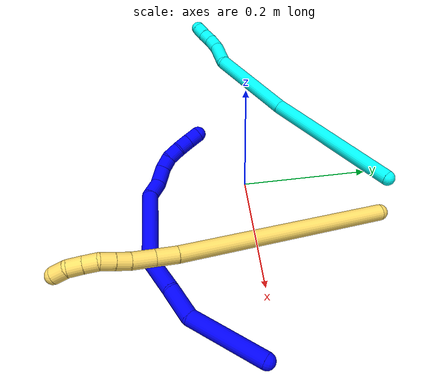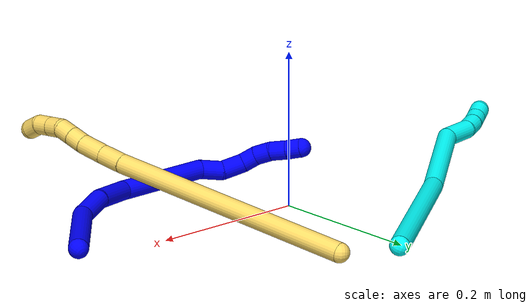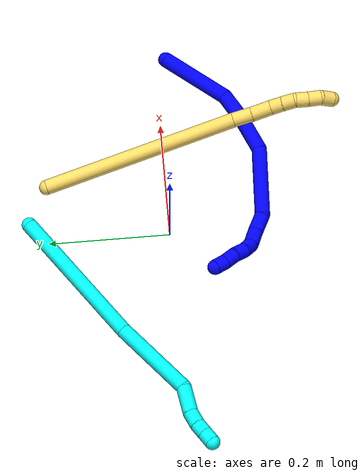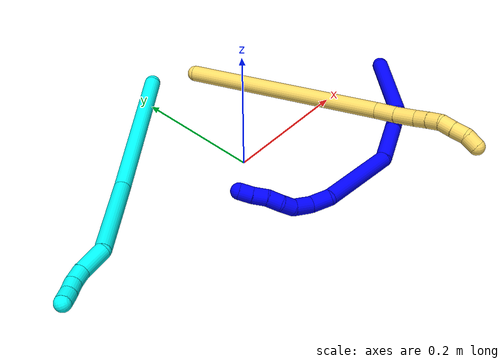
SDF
<sdf version="1.7">
 <world name="default">
  <model name="1">
   <static>0</static>
   <link name="1">
    <collision name="collision-cylinder-e_1_1_4">
     <pose>-0.02764 -0.025324 0.04775 0.487623 -0.472709 -0.119688</pose>
     <geometry><cylinder><radius>0.0125</radius><length>0.121413</length></cylinder></geometry>
     <surface>
      <friction><ode><mu>1.16</mu><mu2>1.16</mu2><slip1>0</slip1><slip2>0</slip2></ode></friction>
      <contact><ode><kp>1e+06</kp><kd>1</kd><max_vel>0</max_vel><min_depth>0.001</min_depth></ode></contact>
     </surface>
    </collision>
    <visual name="visual-cylinder-e_1_1_4">
     <pose>-0.02764 -0.025324 0.04775 0.487623 -0.472709 -0.119688</pose>
     <geometry><cylinder><radius>0.0125</radius><length>0.121413</length></cylinder></geometry>
     <material><ambient>0 0 1 1</ambient></material>
    </visual>
    <collision name="collision-cylinder-e_2_4_5">
     <pose>-0.074391 -0.05725 0.109239 0.448012 -0.897511 -0.218536</pose>
     <geometry><cylinder><radius>0.0125</radius><length>0.048894</length></cylinder></geometry>
     <surface>
      <friction><ode><mu>1.16</mu><mu2>1.16</mu2><slip1>0</slip1><slip2>0</slip2></ode></friction>
      <contact><ode><kp>1e+06</kp><kd>1</kd><max_vel>0</max_vel><min_depth>0.001</min_depth></ode></contact>
     </surface>
    </collision>
    <visual name="visual-cylinder-e_2_4_5">
     <pose>-0.074391 -0.05725 0.109239 0.448012 -0.897511 -0.218536</pose>
     <geometry><cylinder><radius>0.0125</radius><length>0.048894</length></cylinder></geometry>
     <material><ambient>0 0 1 1</ambient></material>
    </visual>
    <collision name="collision-cylinder-e_3_5_6">
     <pose>-0.117673 -0.07959 0.137143 0.837914 -0.851427 -0.398498</pose>
     <geometry><cylinder><radius>0.0125</radius><length>0.064264</length></cylinder></geometry>
     <surface>
      <friction><ode><mu>1.16</mu><mu2>1.16</mu2><slip1>0</slip1><slip2>0</slip2></ode></friction>
      <contact><ode><kp>1e+06</kp><kd>1</kd><max_vel>0</max_vel><min_depth>0.001</min_depth></ode></contact>
     </surface>
    </collision>
    <visual name="visual-cylinder-e_3_5_6">
     <pose>-0.117673 -0.07959 0.137143 0.837914 -0.851427 -0.398498</pose>
     <geometry><cylinder><radius>0.0125</radius><length>0.064264</length></cylinder></geometry>
     <material><ambient>0 0 1 1</ambient></material>
    </visual>
    <collision name="collision-cylinder-e_4_6_7">
     <pose>-0.200979 -0.109463 0.156108 1.24344 -1.32348 -1.01806</pose>
     <geometry><cylinder><radius>0.0125</radius><length>0.121982</length></cylinder></geometry>
     <surface>
      <friction><ode><mu>1.16</mu><mu2>1.16</mu2><slip1>0</slip1><slip2>0</slip2></ode></friction>
      <contact><ode><kp>1e+06</kp><kd>1</kd><max_vel>0</max_vel><min_depth>0.001</min_depth></ode></contact>
     </surface>
    </collision>
    <visual name="visual-cylinder-e_4_6_7">
     <pose>-0.200979 -0.109463 0.156108 1.24344 -1.32348 -1.01806</pose>
     <geometry><cylinder><radius>0.0125</radius><length>0.121982</length></cylinder></geometry>
     <material><ambient>0 0 1 1</ambient></material>
    </visual>
    <collision name="collision-cylinder-e_5_7_8">
     <pose>-0.273729 -0.127041 0.155318 2.59 -1.12153 -2.29481</pose>
     <geometry><cylinder><radius>0.0125</radius><length>0.030231</length></cylinder></geometry>
     <surface>
      <friction><ode><mu>1.16</mu><mu2>1.16</mu2><slip1>0</slip1><slip2>0</slip2></ode></friction>
      <contact><ode><kp>1e+06</kp><kd>1</kd><max_vel>0</max_vel><min_depth>0.001</min_depth></ode></contact>
     </surface>
    </collision>
    <visual name="visual-cylinder-e_5_7_8">
     <pose>-0.273729 -0.127041 0.155318 2.59 -1.12153 -2.29481</pose>
     <geometry><cylinder><radius>0.0125</radius><length>0.030231</length></cylinder></geometry>
     <material><ambient>0 0 1 1</ambient></material>
    </visual>
    <collision name="collision-cylinder-e_6_8_9">
     <pose>-0.302064 -0.129254 0.147658 -2.60607 -1.40878 2.51705</pose>
     <geometry><cylinder><radius>0.0125</radius><length>0.029828</length></cylinder></geometry>
     <surface>
      <friction><ode><mu>1.16</mu><mu2>1.16</mu2><slip1>0</slip1><slip2>0</slip2></ode></friction>
      <contact><ode><kp>1e+06</kp><kd>1</kd><max_vel>0</max_vel><min_depth>0.001</min_depth></ode></contact>
     </surface>
    </collision>
    <visual name="visual-cylinder-e_6_8_9">
     <pose>-0.302064 -0.129254 0.147658 -2.60607 -1.40878 2.51705</pose>
     <geometry><cylinder><radius>0.0125</radius><length>0.029828</length></cylinder></geometry>
     <material><ambient>0 0 1 1</ambient></material>
    </visual>
    <collision name="collision-cylinder-e_7_9_10">
     <pose>-0.325315 -0.123306 0.142708 -2.11872 -0.995814 1.53884</pose>
     <geometry><cylinder><radius>0.0125</radius><length>0.020336</length></cylinder></geometry>
     <surface>
      <friction><ode><mu>1.16</mu><mu2>1.16</mu2><slip1>0</slip1><slip2>0</slip2></ode></friction>
      <contact><ode><kp>1e+06</kp><kd>1</kd><max_vel>0</max_vel><min_depth>0.001</min_depth></ode></contact>
     </surface>
    </collision>
    <visual name="visual-cylinder-e_7_9_10">
     <pose>-0.325315 -0.123306 0.142708 -2.11872 -0.995814 1.53884</pose>
     <geometry><cylinder><radius>0.0125</radius><length>0.020336</length></cylinder></geometry>
     <material><ambient>0 0 1 1</ambient></material>
    </visual>
    <collision name="collision-cylinder-e_8_10_11">
     <pose>-0.341383 -0.113893 0.133859 -2.47527 -0.78151 1.74418</pose>
     <geometry><cylinder><radius>0.0125</radius><length>0.021394</length></cylinder></geometry>
     <surface>
      <friction><ode><mu>1.16</mu><mu2>1.16</mu2><slip1>0</slip1><slip2>0</slip2></ode></friction>
      <contact><ode><kp>1e+06</kp><kd>1</kd><max_vel>0</max_vel><min_depth>0.001</min_depth></ode></contact>
     </surface>
    </collision>
    <visual name="visual-cylinder-e_8_10_11">
     <pose>-0.341383 -0.113893 0.133859 -2.47527 -0.78151 1.74418</pose>
     <geometry><cylinder><radius>0.0125</radius><length>0.021394</length></cylinder></geometry>
     <material><ambient>0 0 1 1</ambient></material>
    </visual>
    <collision name="collision-cylinder-e_9_11_12">
     <pose>-0.357005 -0.106862 0.121235 -2.80374 -0.853615 2.42399</pose>
     <geometry><cylinder><radius>0.0125</radius><length>0.021463</length></cylinder></geometry>
     <surface>
      <friction><ode><mu>1.16</mu><mu2>1.16</mu2><slip1>0</slip1><slip2>0</slip2></ode></friction>
      <contact><ode><kp>1e+06</kp><kd>1</kd><max_vel>0</max_vel><min_depth>0.001</min_depth></ode></contact>
     </surface>
    </collision>
    <visual name="visual-cylinder-e_9_11_12">
     <pose>-0.357005 -0.106862 0.121235 -2.80374 -0.853615 2.42399</pose>
     <geometry><cylinder><radius>0.0125</radius><length>0.021463</length></cylinder></geometry>
     <material><ambient>0 0 1 1</ambient></material>
    </visual>
    <collision name="collision-cylinder-e_10_12_2">
     <pose>-0.372104 -0.101134 0.108152 -2.65631 -0.767498 2.04172</pose>
     <geometry><cylinder><radius>0.0125</radius><length>0.020197</length></cylinder></geometry>
     <surface>
      <friction><ode><mu>1.16</mu><mu2>1.16</mu2><slip1>0</slip1><slip2>0</slip2></ode></friction>
      <contact><ode><kp>1e+06</kp><kd>1</kd><max_vel>0</max_vel><min_depth>0.001</min_depth></ode></contact>
     </surface>
    </collision>
    <visual name="visual-cylinder-e_10_12_2">
     <pose>-0.372104 -0.101134 0.108152 -2.65631 -0.767498 2.04172</pose>
     <geometry><cylinder><radius>0.0125</radius><length>0.020197</length></cylinder></geometry>
     <material><ambient>0 0 1 1</ambient></material>
    </visual>
    <collision name="collision-sphere-2">
     <pose>-0.379116 -0.097744 0.101724 0 -0 0</pose>
     <geometry><sphere><radius>0.0125</radius></sphere></geometry>
     <surface>
      <friction><ode><mu>1.16</mu><mu2>1.16</mu2><slip1>0</slip1><slip2>0</slip2></ode></friction>
      <contact><ode><kp>1e+06</kp><kd>1</kd><max_vel>0</max_vel><min_depth>0.001</min_depth></ode></contact>
     </surface>
    </collision>
    <visual name="visual-sphere-2">
     <pose>-0.379116 -0.097744 0.101724 0 -0 0</pose>
     <geometry><sphere><radius>0.0125</radius></sphere></geometry>
     <material><ambient>0 0 1 1</ambient></material>
    </visual>
    <collision name="collision-sphere-12">
     <pose>-0.365093 -0.104524 0.114581 0 -0 0</pose>
     <geometry><sphere><radius>0.0125</radius></sphere></geometry>
     <surface>
      <friction><ode><mu>1.16</mu><mu2>1.16</mu2><slip1>0</slip1><slip2>0</slip2></ode></friction>
      <contact><ode><kp>1e+06</kp><kd>1</kd><max_vel>0</max_vel><min_depth>0.001</min_depth></ode></contact>
     </surface>
    </collision>
    <visual name="visual-sphere-12">
     <pose>-0.365093 -0.104524 0.114581 0 -0 0</pose>
     <geometry><sphere><radius>0.0125</radius></sphere></geometry>
     <material><ambient>0 0 1 1</ambient></material>
    </visual>
    <collision name="collision-sphere-11">
     <pose>-0.348917 -0.109199 0.12789 0 -0 0</pose>
     <geometry><sphere><radius>0.0125</radius></sphere></geometry>
     <surface>
      <friction><ode><mu>1.16</mu><mu2>1.16</mu2><slip1>0</slip1><slip2>0</slip2></ode></friction>
      <contact><ode><kp>1e+06</kp><kd>1</kd><max_vel>0</max_vel><min_depth>0.001</min_depth></ode></contact>
     </surface>
    </collision>
    <visual name="visual-sphere-11">
     <pose>-0.348917 -0.109199 0.12789 0 -0 0</pose>
     <geometry><sphere><radius>0.0125</radius></sphere></geometry>
     <material><ambient>0 0 1 1</ambient></material>
    </visual>
    <collision name="collision-sphere-10">
     <pose>-0.333848 -0.118586 0.139828 0 -0 0</pose>
     <geometry><sphere><radius>0.0125</radius></sphere></geometry>
     <surface>
      <friction><ode><mu>1.16</mu><mu2>1.16</mu2><slip1>0</slip1><slip2>0</slip2></ode></friction>
      <contact><ode><kp>1e+06</kp><kd>1</kd><max_vel>0</max_vel><min_depth>0.001</min_depth></ode></contact>
     </surface>
    </collision>
    <visual name="visual-sphere-10">
     <pose>-0.333848 -0.118586 0.139828 0 -0 0</pose>
     <geometry><sphere><radius>0.0125</radius></sphere></geometry>
     <material><ambient>0 0 1 1</ambient></material>
    </visual>
    <collision name="collision-sphere-9">
     <pose>-0.316782 -0.128026 0.145589 0 -0 0</pose>
     <geometry><sphere><radius>0.0125</radius></sphere></geometry>
     <surface>
      <friction><ode><mu>1.16</mu><mu2>1.16</mu2><slip1>0</slip1><slip2>0</slip2></ode></friction>
      <contact><ode><kp>1e+06</kp><kd>1</kd><max_vel>0</max_vel><min_depth>0.001</min_depth></ode></contact>
     </surface>
    </collision>
    <visual name="visual-sphere-9">
     <pose>-0.316782 -0.128026 0.145589 0 -0 0</pose>
     <geometry><sphere><radius>0.0125</radius></sphere></geometry>
     <material><ambient>0 0 1 1</ambient></material>
    </visual>
    <collision name="collision-sphere-4">
     <pose>-0.055279 -0.050647 0.095499 0 -0 0</pose>
     <geometry><sphere><radius>0.0125</radius></sphere></geometry>
     <surface>
      <friction><ode><mu>1.16</mu><mu2>1.16</mu2><slip1>0</slip1><slip2>0</slip2></ode></friction>
      <contact><ode><kp>1e+06</kp><kd>1</kd><max_vel>0</max_vel><min_depth>0.001</min_depth></ode></contact>
     </surface>
    </collision>
    <visual name="visual-sphere-4">
     <pose>-0.055279 -0.050647 0.095499 0 -0 0</pose>
     <geometry><sphere><radius>0.0125</radius></sphere></geometry>
     <material><ambient>0 0 1 1</ambient></material>
    </visual>
    <collision name="collision-sphere-1">
     <geometry><sphere><radius>0.0125</radius></sphere></geometry>
     <surface>
      <friction><ode><mu>1.16</mu><mu2>1.16</mu2><slip1>0</slip1><slip2>0</slip2></ode></friction>
      <contact><ode><kp>1e+06</kp><kd>1</kd><max_vel>0</max_vel><min_depth>0.001</min_depth></ode></contact>
     </surface>
    </collision>
    <visual name="visual-sphere-1">
     <geometry><sphere><radius>0.0125</radius></sphere></geometry>
     <material><ambient>0 0 1 1</ambient></material>
    </visual>
    <collision name="collision-sphere-8">
     <pose>-0.287345 -0.130481 0.149727 0 -0 0</pose>
     <geometry><sphere><radius>0.0125</radius></sphere></geometry>
     <surface>
      <friction><ode><mu>1.16</mu><mu2>1.16</mu2><slip1>0</slip1><slip2>0</slip2></ode></friction>
      <contact><ode><kp>1e+06</kp><kd>1</kd><max_vel>0</max_vel><min_depth>0.001</min_depth></ode></contact>
     </surface>
    </collision>
    <visual name="visual-sphere-8">
     <pose>-0.287345 -0.130481 0.149727 0 -0 0</pose>
     <geometry><sphere><radius>0.0125</radius></sphere></geometry>
     <material><ambient>0 0 1 1</ambient></material>
    </visual>
    <collision name="collision-sphere-5">
     <pose>-0.093503 -0.063854 0.122979 0 -0 0</pose>
     <geometry><sphere><radius>0.0125</radius></sphere></geometry>
     <surface>
      <friction><ode><mu>1.16</mu><mu2>1.16</mu2><slip1>0</slip1><slip2>0</slip2></ode></friction>
      <contact><ode><kp>1e+06</kp><kd>1</kd><max_vel>0</max_vel><min_depth>0.001</min_depth></ode></contact>
     </surface>
    </collision>
    <visual name="visual-sphere-5">
     <pose>-0.093503 -0.063854 0.122979 0 -0 0</pose>
     <geometry><sphere><radius>0.0125</radius></sphere></geometry>
     <material><ambient>0 0 1 1</ambient></material>
    </visual>
    <collision name="collision-sphere-6">
     <pose>-0.141844 -0.095326 0.151307 0 -0 0</pose>
     <geometry><sphere><radius>0.0125</radius></sphere></geometry>
     <surface>
      <friction><ode><mu>1.16</mu><mu2>1.16</mu2><slip1>0</slip1><slip2>0</slip2></ode></friction>
      <contact><ode><kp>1e+06</kp><kd>1</kd><max_vel>0</max_vel><min_depth>0.001</min_depth></ode></contact>
     </surface>
    </collision>
    <visual name="visual-sphere-6">
     <pose>-0.141844 -0.095326 0.151307 0 -0 0</pose>
     <geometry><sphere><radius>0.0125</radius></sphere></geometry>
     <material><ambient>0 0 1 1</ambient></material>
    </visual>
    <collision name="collision-sphere-7">
     <pose>-0.260114 -0.123601 0.160909 0 -0 0</pose>
     <geometry><sphere><radius>0.0125</radius></sphere></geometry>
     <surface>
      <friction><ode><mu>1.16</mu><mu2>1.16</mu2><slip1>0</slip1><slip2>0</slip2></ode></friction>
      <contact><ode><kp>1e+06</kp><kd>1</kd><max_vel>0</max_vel><min_depth>0.001</min_depth></ode></contact>
     </surface>
    </collision>
    <visual name="visual-sphere-7">
     <pose>-0.260114 -0.123601 0.160909 0 -0 0</pose>
     <geometry><sphere><radius>0.0125</radius></sphere></geometry>
     <material><ambient>0 0 1 1</ambient></material>
    </visual>
    <inertial>
     <pose>-0.170905 -0.082635 0.117292 0 -0 0</pose>
     <mass>0.5</mass>
     <inertia>
      <ixx>9.2e-05</ixx>
      <ixy>0</ixy>
      <ixz>0</ixz>
      <iyy>0.000268</iyy>
      <iyz>0</iyz>
      <izz>0.000382</izz>
     </inertia>
    </inertial>
   </link>
   <pose>0.317458 -0.019085 0.012481 1.1968 0.224847 -0.210768</pose>
  </model>
  <model name="3">
   <static>0</static>
   <link name="3">
    <collision name="collision-cylinder-e_1_1_4">
     <pose>-0.081458 -0.090206 0.006492 1.49895 -0.733195 -0.686349</pose>
     <geometry><cylinder><radius>0.0125</radius><length>0.243431</length></cylinder></geometry>
     <surface>
      <friction><ode><mu>1.16</mu><mu2>1.16</mu2><slip1>0</slip1><slip2>0</slip2></ode></friction>
      <contact><ode><kp>1e+06</kp><kd>1</kd><max_vel>0</max_vel><min_depth>0.001</min_depth></ode></contact>
     </surface>
    </collision>
    <visual name="visual-cylinder-e_1_1_4">
     <pose>-0.081458 -0.090206 0.006492 1.49895 -0.733195 -0.686349</pose>
     <geometry><cylinder><radius>0.0125</radius><length>0.243431</length></cylinder></geometry>
     <material><ambient>0.003922 1 0.996078 1</ambient></material>
    </visual>
    <collision name="collision-cylinder-e_2_4_5">
     <pose>-0.203937 -0.240976 0.009463 1.62889 -0.594571 -0.627921</pose>
     <geometry><cylinder><radius>0.0125</radius><length>0.146467</length></cylinder></geometry>
     <surface>
      <friction><ode><mu>1.16</mu><mu2>1.16</mu2><slip1>0</slip1><slip2>0</slip2></ode></friction>
      <contact><ode><kp>1e+06</kp><kd>1</kd><max_vel>0</max_vel><min_depth>0.001</min_depth></ode></contact>
     </surface>
    </collision>
    <visual name="visual-cylinder-e_2_4_5">
     <pose>-0.203937 -0.240976 0.009463 1.62889 -0.594571 -0.627921</pose>
     <geometry><cylinder><radius>0.0125</radius><length>0.146467</length></cylinder></geometry>
     <material><ambient>0.003922 1 0.996078 1</ambient></material>
    </visual>
    <collision name="collision-cylinder-e_3_5_6">
     <pose>-0.254932 -0.319275 0.015962 1.05647 -0.455235 -0.268707</pose>
     <geometry><cylinder><radius>0.0125</radius><length>0.045362</length></cylinder></geometry>
     <surface>
      <friction><ode><mu>1.16</mu><mu2>1.16</mu2><slip1>0</slip1><slip2>0</slip2></ode></friction>
      <contact><ode><kp>1e+06</kp><kd>1</kd><max_vel>0</max_vel><min_depth>0.001</min_depth></ode></contact>
     </surface>
    </collision>
    <visual name="visual-cylinder-e_3_5_6">
     <pose>-0.254932 -0.319275 0.015962 1.05647 -0.455235 -0.268707</pose>
     <geometry><cylinder><radius>0.0125</radius><length>0.045362</length></cylinder></geometry>
     <material><ambient>0.003922 1 0.996078 1</ambient></material>
    </visual>
    <collision name="collision-cylinder-e_4_6_7">
     <pose>-0.270852 -0.34707 0.028367 1.33815 -0.52212 -0.416388</pose>
     <geometry><cylinder><radius>0.0125</radius><length>0.023853</length></cylinder></geometry>
     <surface>
      <friction><ode><mu>1.16</mu><mu2>1.16</mu2><slip1>0</slip1><slip2>0</slip2></ode></friction>
      <contact><ode><kp>1e+06</kp><kd>1</kd><max_vel>0</max_vel><min_depth>0.001</min_depth></ode></contact>
     </surface>
    </collision>
    <visual name="visual-cylinder-e_4_6_7">
     <pose>-0.270852 -0.34707 0.028367 1.33815 -0.52212 -0.416388</pose>
     <geometry><cylinder><radius>0.0125</radius><length>0.023853</length></cylinder></geometry>
     <material><ambient>0.003922 1 0.996078 1</ambient></material>
    </visual>
    <collision name="collision-cylinder-e_5_7_8">
     <pose>-0.282281 -0.365526 0.031205 1.51666 -0.577597 -0.54869</pose>
     <geometry><cylinder><radius>0.0125</radius><length>0.020077</length></cylinder></geometry>
     <surface>
      <friction><ode><mu>1.16</mu><mu2>1.16</mu2><slip1>0</slip1><slip2>0</slip2></ode></friction>
      <contact><ode><kp>1e+06</kp><kd>1</kd><max_vel>0</max_vel><min_depth>0.001</min_depth></ode></contact>
     </surface>
    </collision>
    <visual name="visual-cylinder-e_5_7_8">
     <pose>-0.282281 -0.365526 0.031205 1.51666 -0.577597 -0.54869</pose>
     <geometry><cylinder><radius>0.0125</radius><length>0.020077</length></cylinder></geometry>
     <material><ambient>0.003922 1 0.996078 1</ambient></material>
    </visual>
    <collision name="collision-cylinder-e_6_8_2">
     <pose>-0.292565 -0.383147 0.032023 1.5315 -0.479837 -0.462005</pose>
     <geometry><cylinder><radius>0.0125</radius><length>0.02081</length></cylinder></geometry>
     <surface>
      <friction><ode><mu>1.16</mu><mu2>1.16</mu2><slip1>0</slip1><slip2>0</slip2></ode></friction>
      <contact><ode><kp>1e+06</kp><kd>1</kd><max_vel>0</max_vel><min_depth>0.001</min_depth></ode></contact>
     </surface>
    </collision>
    <visual name="visual-cylinder-e_6_8_2">
     <pose>-0.292565 -0.383147 0.032023 1.5315 -0.479837 -0.462005</pose>
     <geometry><cylinder><radius>0.0125</radius><length>0.02081</length></cylinder></geometry>
     <material><ambient>0.003922 1 0.996078 1</ambient></material>
    </visual>
    <collision name="collision-sphere-2">
     <pose>-0.297369 -0.392369 0.032385 0 -0 0</pose>
     <geometry><sphere><radius>0.0125</radius></sphere></geometry>
     <surface>
      <friction><ode><mu>1.16</mu><mu2>1.16</mu2><slip1>0</slip1><slip2>0</slip2></ode></friction>
      <contact><ode><kp>1e+06</kp><kd>1</kd><max_vel>0</max_vel><min_depth>0.001</min_depth></ode></contact>
     </surface>
    </collision>
    <visual name="visual-sphere-2">
     <pose>-0.297369 -0.392369 0.032385 0 -0 0</pose>
     <geometry><sphere><radius>0.0125</radius></sphere></geometry>
     <material><ambient>0.003922 1 0.996078 1</ambient></material>
    </visual>
    <collision name="collision-sphere-4">
     <pose>-0.162915 -0.180412 0.012985 0 -0 0</pose>
     <geometry><sphere><radius>0.0125</radius></sphere></geometry>
     <surface>
      <friction><ode><mu>1.16</mu><mu2>1.16</mu2><slip1>0</slip1><slip2>0</slip2></ode></friction>
      <contact><ode><kp>1e+06</kp><kd>1</kd><max_vel>0</max_vel><min_depth>0.001</min_depth></ode></contact>
     </surface>
    </collision>
    <visual name="visual-sphere-4">
     <pose>-0.162915 -0.180412 0.012985 0 -0 0</pose>
     <geometry><sphere><radius>0.0125</radius></sphere></geometry>
     <material><ambient>0.003922 1 0.996078 1</ambient></material>
    </visual>
    <collision name="collision-sphere-1">
     <geometry><sphere><radius>0.0125</radius></sphere></geometry>
     <surface>
      <friction><ode><mu>1.16</mu><mu2>1.16</mu2><slip1>0</slip1><slip2>0</slip2></ode></friction>
      <contact><ode><kp>1e+06</kp><kd>1</kd><max_vel>0</max_vel><min_depth>0.001</min_depth></ode></contact>
     </surface>
    </collision>
    <visual name="visual-sphere-1">
     <geometry><sphere><radius>0.0125</radius></sphere></geometry>
     <material><ambient>0.003922 1 0.996078 1</ambient></material>
    </visual>
    <collision name="collision-sphere-8">
     <pose>-0.287762 -0.373924 0.03166 0 -0 0</pose>
     <geometry><sphere><radius>0.0125</radius></sphere></geometry>
     <surface>
      <friction><ode><mu>1.16</mu><mu2>1.16</mu2><slip1>0</slip1><slip2>0</slip2></ode></friction>
      <contact><ode><kp>1e+06</kp><kd>1</kd><max_vel>0</max_vel><min_depth>0.001</min_depth></ode></contact>
     </surface>
    </collision>
    <visual name="visual-sphere-8">
     <pose>-0.287762 -0.373924 0.03166 0 -0 0</pose>
     <geometry><sphere><radius>0.0125</radius></sphere></geometry>
     <material><ambient>0.003922 1 0.996078 1</ambient></material>
    </visual>
    <collision name="collision-sphere-5">
     <pose>-0.244959 -0.301539 0.00594 0 -0 0</pose>
     <geometry><sphere><radius>0.0125</radius></sphere></geometry>
     <surface>
      <friction><ode><mu>1.16</mu><mu2>1.16</mu2><slip1>0</slip1><slip2>0</slip2></ode></friction>
      <contact><ode><kp>1e+06</kp><kd>1</kd><max_vel>0</max_vel><min_depth>0.001</min_depth></ode></contact>
     </surface>
    </collision>
    <visual name="visual-sphere-5">
     <pose>-0.244959 -0.301539 0.00594 0 -0 0</pose>
     <geometry><sphere><radius>0.0125</radius></sphere></geometry>
     <material><ambient>0.003922 1 0.996078 1</ambient></material>
    </visual>
    <collision name="collision-sphere-6">
     <pose>-0.264904 -0.337011 0.025984 0 -0 0</pose>
     <geometry><sphere><radius>0.0125</radius></sphere></geometry>
     <surface>
      <friction><ode><mu>1.16</mu><mu2>1.16</mu2><slip1>0</slip1><slip2>0</slip2></ode></friction>
      <contact><ode><kp>1e+06</kp><kd>1</kd><max_vel>0</max_vel><min_depth>0.001</min_depth></ode></contact>
     </surface>
    </collision>
    <visual name="visual-sphere-6">
     <pose>-0.264904 -0.337011 0.025984 0 -0 0</pose>
     <geometry><sphere><radius>0.0125</radius></sphere></geometry>
     <material><ambient>0.003922 1 0.996078 1</ambient></material>
    </visual>
    <collision name="collision-sphere-7">
     <pose>-0.2768 -0.357129 0.03075 0 -0 0</pose>
     <geometry><sphere><radius>0.0125</radius></sphere></geometry>
     <surface>
      <friction><ode><mu>1.16</mu><mu2>1.16</mu2><slip1>0</slip1><slip2>0</slip2></ode></friction>
      <contact><ode><kp>1e+06</kp><kd>1</kd><max_vel>0</max_vel><min_depth>0.001</min_depth></ode></contact>
     </surface>
    </collision>
    <visual name="visual-sphere-7">
     <pose>-0.2768 -0.357129 0.03075 0 -0 0</pose>
     <geometry><sphere><radius>0.0125</radius></sphere></geometry>
     <material><ambient>0.003922 1 0.996078 1</ambient></material>
    </visual>
    <inertial>
     <pose>-0.15896 -0.190655 0.01132 0 -0 0</pose>
     <mass>0.5</mass>
     <inertia>
      <ixx>0.00016</ixx>
      <ixy>0</ixy>
      <ixz>0</ixz>
      <iyy>-7.3e-05</iyy>
      <iyz>0</iyz>
      <izz>0.002101</izz>
     </inertia>
    </inertial>
   </link>
   <pose>0.031263 0.229663 0.014275 -2.14534 -0.737943 1.07913</pose>
  </model>
  <model name="5">
   <static>0</static>
   <link name="5">
    <collision name="collision-cylinder-e_1_1_4">
     <pose>0.015587 -0.118888 0.111872 0.81579 0.095194 0.041162</pose>
     <geometry><cylinder><radius>0.0125</radius><length>0.327979</length></cylinder></geometry>
     <surface>
      <friction><ode><mu>1.16</mu><mu2>1.16</mu2><slip1>0</slip1><slip2>0</slip2></ode></friction>
      <contact><ode><kp>1e+06</kp><kd>1</kd><max_vel>0</max_vel><min_depth>0.001</min_depth></ode></contact>
     </surface>
    </collision>
    <visual name="visual-cylinder-e_1_1_4">
     <pose>0.015587 -0.118888 0.111872 0.81579 0.095194 0.041162</pose>
     <geometry><cylinder><radius>0.0125</radius><length>0.327979</length></cylinder></geometry>
     <material><ambient>1 0.858824 0.4 1</ambient></material>
    </visual>
    <collision name="collision-cylinder-e_2_4_5">
     <pose>0.032491 -0.250195 0.233914 0.884679 0.081851 0.038785</pose>
     <geometry><cylinder><radius>0.0125</radius><length>0.032212</length></cylinder></geometry>
     <surface>
      <friction><ode><mu>1.16</mu><mu2>1.16</mu2><slip1>0</slip1><slip2>0</slip2></ode></friction>
      <contact><ode><kp>1e+06</kp><kd>1</kd><max_vel>0</max_vel><min_depth>0.001</min_depth></ode></contact>
     </surface>
    </collision>
    <visual name="visual-cylinder-e_2_4_5">
     <pose>0.032491 -0.250195 0.233914 0.884679 0.081851 0.038785</pose>
     <geometry><cylinder><radius>0.0125</radius><length>0.032212</length></cylinder></geometry>
     <material><ambient>1 0.858824 0.4 1</ambient></material>
    </visual>
    <collision name="collision-cylinder-e_3_5_6">
     <pose>0.034382 -0.27544 0.25503 0.86431 0.033989 0.015678</pose>
     <geometry><cylinder><radius>0.0125</radius><length>0.033743</length></cylinder></geometry>
     <surface>
      <friction><ode><mu>1.16</mu><mu2>1.16</mu2><slip1>0</slip1><slip2>0</slip2></ode></friction>
      <contact><ode><kp>1e+06</kp><kd>1</kd><max_vel>0</max_vel><min_depth>0.001</min_depth></ode></contact>
     </surface>
    </collision>
    <visual name="visual-cylinder-e_3_5_6">
     <pose>0.034382 -0.27544 0.25503 0.86431 0.033989 0.015678</pose>
     <geometry><cylinder><radius>0.0125</radius><length>0.033743</length></cylinder></geometry>
     <material><ambient>1 0.858824 0.4 1</ambient></material>
    </visual>
    <collision name="collision-cylinder-e_4_6_7">
     <pose>0.034496 -0.29672 0.272036 0.948815 -0.044069 -0.022633</pose>
     <geometry><cylinder><radius>0.0125</radius><length>0.020823</length></cylinder></geometry>
     <surface>
      <friction><ode><mu>1.16</mu><mu2>1.16</mu2><slip1>0</slip1><slip2>0</slip2></ode></friction>
      <contact><ode><kp>1e+06</kp><kd>1</kd><max_vel>0</max_vel><min_depth>0.001</min_depth></ode></contact>
     </surface>
    </collision>
    <visual name="visual-cylinder-e_4_6_7">
     <pose>0.034496 -0.29672 0.272036 0.948815 -0.044069 -0.022633</pose>
     <geometry><cylinder><radius>0.0125</radius><length>0.020823</length></cylinder></geometry>
     <material><ambient>1 0.858824 0.4 1</ambient></material>
    </visual>
    <collision name="collision-cylinder-e_5_7_8">
     <pose>0.033893 -0.314006 0.284091 0.974577 -0.013512 -0.00716</pose>
     <geometry><cylinder><radius>0.0125</radius><length>0.021353</length></cylinder></geometry>
     <surface>
      <friction><ode><mu>1.16</mu><mu2>1.16</mu2><slip1>0</slip1><slip2>0</slip2></ode></friction>
      <contact><ode><kp>1e+06</kp><kd>1</kd><max_vel>0</max_vel><min_depth>0.001</min_depth></ode></contact>
     </surface>
    </collision>
    <visual name="visual-cylinder-e_5_7_8">
     <pose>0.033893 -0.314006 0.284091 0.974577 -0.013512 -0.00716</pose>
     <geometry><cylinder><radius>0.0125</radius><length>0.021353</length></cylinder></geometry>
     <material><ambient>1 0.858824 0.4 1</ambient></material>
    </visual>
    <collision name="collision-cylinder-e_6_8_9">
     <pose>0.037478 -0.330781 0.295565 0.966777 0.368767 0.195177</pose>
     <geometry><cylinder><radius>0.0125</radius><length>0.020687</length></cylinder></geometry>
     <surface>
      <friction><ode><mu>1.16</mu><mu2>1.16</mu2><slip1>0</slip1><slip2>0</slip2></ode></friction>
      <contact><ode><kp>1e+06</kp><kd>1</kd><max_vel>0</max_vel><min_depth>0.001</min_depth></ode></contact>
     </surface>
    </collision>
    <visual name="visual-cylinder-e_6_8_9">
     <pose>0.037478 -0.330781 0.295565 0.966777 0.368767 0.195177</pose>
     <geometry><cylinder><radius>0.0125</radius><length>0.020687</length></cylinder></geometry>
     <material><ambient>1 0.858824 0.4 1</ambient></material>
    </visual>
    <collision name="collision-cylinder-e_7_9_10">
     <pose>0.044805 -0.346773 0.30729 0.910989 0.339547 0.16755</pose>
     <geometry><cylinder><radius>0.0125</radius><length>0.021612</length></cylinder></geometry>
     <surface>
      <friction><ode><mu>1.16</mu><mu2>1.16</mu2><slip1>0</slip1><slip2>0</slip2></ode></friction>
      <contact><ode><kp>1e+06</kp><kd>1</kd><max_vel>0</max_vel><min_depth>0.001</min_depth></ode></contact>
     </surface>
    </collision>
    <visual name="visual-cylinder-e_7_9_10">
     <pose>0.044805 -0.346773 0.30729 0.910989 0.339547 0.16755</pose>
     <geometry><cylinder><radius>0.0125</radius><length>0.021612</length></cylinder></geometry>
     <material><ambient>1 0.858824 0.4 1</ambient></material>
    </visual>
    <collision name="collision-cylinder-e_8_10_2">
     <pose>0.055871 -0.360939 0.318372 0.901705 0.763779 0.384048</pose>
     <geometry><cylinder><radius>0.0125</radius><length>0.021591</length></cylinder></geometry>
     <surface>
      <friction><ode><mu>1.16</mu><mu2>1.16</mu2><slip1>0</slip1><slip2>0</slip2></ode></friction>
      <contact><ode><kp>1e+06</kp><kd>1</kd><max_vel>0</max_vel><min_depth>0.001</min_depth></ode></contact>
     </surface>
    </collision>
    <visual name="visual-cylinder-e_8_10_2">
     <pose>0.055871 -0.360939 0.318372 0.901705 0.763779 0.384048</pose>
     <geometry><cylinder><radius>0.0125</radius><length>0.021591</length></cylinder></geometry>
     <material><ambient>1 0.858824 0.4 1</ambient></material>
    </visual>
    <collision name="collision-sphere-2">
     <pose>0.063338 -0.367054 0.323208 0 -0 0</pose>
     <geometry><sphere><radius>0.0125</radius></sphere></geometry>
     <surface>
      <friction><ode><mu>1.16</mu><mu2>1.16</mu2><slip1>0</slip1><slip2>0</slip2></ode></friction>
      <contact><ode><kp>1e+06</kp><kd>1</kd><max_vel>0</max_vel><min_depth>0.001</min_depth></ode></contact>
     </surface>
    </collision>
    <visual name="visual-sphere-2">
     <pose>0.063338 -0.367054 0.323208 0 -0 0</pose>
     <geometry><sphere><radius>0.0125</radius></sphere></geometry>
     <material><ambient>1 0.858824 0.4 1</ambient></material>
    </visual>
    <collision name="collision-sphere-10">
     <pose>0.048404 -0.354823 0.313536 0 -0 0</pose>
     <geometry><sphere><radius>0.0125</radius></sphere></geometry>
     <surface>
      <friction><ode><mu>1.16</mu><mu2>1.16</mu2><slip1>0</slip1><slip2>0</slip2></ode></friction>
      <contact><ode><kp>1e+06</kp><kd>1</kd><max_vel>0</max_vel><min_depth>0.001</min_depth></ode></contact>
     </surface>
    </collision>
    <visual name="visual-sphere-10">
     <pose>0.048404 -0.354823 0.313536 0 -0 0</pose>
     <geometry><sphere><radius>0.0125</radius></sphere></geometry>
     <material><ambient>1 0.858824 0.4 1</ambient></material>
    </visual>
    <collision name="collision-sphere-9">
     <pose>0.041206 -0.338722 0.301045 0 -0 0</pose>
     <geometry><sphere><radius>0.0125</radius></sphere></geometry>
     <surface>
      <friction><ode><mu>1.16</mu><mu2>1.16</mu2><slip1>0</slip1><slip2>0</slip2></ode></friction>
      <contact><ode><kp>1e+06</kp><kd>1</kd><max_vel>0</max_vel><min_depth>0.001</min_depth></ode></contact>
     </surface>
    </collision>
    <visual name="visual-sphere-9">
     <pose>0.041206 -0.338722 0.301045 0 -0 0</pose>
     <geometry><sphere><radius>0.0125</radius></sphere></geometry>
     <material><ambient>1 0.858824 0.4 1</ambient></material>
    </visual>
    <collision name="collision-sphere-4">
     <pose>0.031175 -0.237775 0.223744 0 -0 0</pose>
     <geometry><sphere><radius>0.0125</radius></sphere></geometry>
     <surface>
      <friction><ode><mu>1.16</mu><mu2>1.16</mu2><slip1>0</slip1><slip2>0</slip2></ode></friction>
      <contact><ode><kp>1e+06</kp><kd>1</kd><max_vel>0</max_vel><min_depth>0.001</min_depth></ode></contact>
     </surface>
    </collision>
    <visual name="visual-sphere-4">
     <pose>0.031175 -0.237775 0.223744 0 -0 0</pose>
     <geometry><sphere><radius>0.0125</radius></sphere></geometry>
     <material><ambient>1 0.858824 0.4 1</ambient></material>
    </visual>
    <collision name="collision-sphere-1">
     <geometry><sphere><radius>0.0125</radius></sphere></geometry>
     <surface>
      <friction><ode><mu>1.16</mu><mu2>1.16</mu2><slip1>0</slip1><slip2>0</slip2></ode></friction>
      <contact><ode><kp>1e+06</kp><kd>1</kd><max_vel>0</max_vel><min_depth>0.001</min_depth></ode></contact>
     </surface>
    </collision>
    <visual name="visual-sphere-1">
     <geometry><sphere><radius>0.0125</radius></sphere></geometry>
     <material><ambient>1 0.858824 0.4 1</ambient></material>
    </visual>
    <collision name="collision-sphere-8">
     <pose>0.033749 -0.32284 0.290085 0 -0 0</pose>
     <geometry><sphere><radius>0.0125</radius></sphere></geometry>
     <surface>
      <friction><ode><mu>1.16</mu><mu2>1.16</mu2><slip1>0</slip1><slip2>0</slip2></ode></friction>
      <contact><ode><kp>1e+06</kp><kd>1</kd><max_vel>0</max_vel><min_depth>0.001</min_depth></ode></contact>
     </surface>
    </collision>
    <visual name="visual-sphere-8">
     <pose>0.033749 -0.32284 0.290085 0 -0 0</pose>
     <geometry><sphere><radius>0.0125</radius></sphere></geometry>
     <material><ambient>1 0.858824 0.4 1</ambient></material>
    </visual>
    <collision name="collision-sphere-5">
     <pose>0.033808 -0.262615 0.244084 0 -0 0</pose>
     <geometry><sphere><radius>0.0125</radius></sphere></geometry>
     <surface>
      <friction><ode><mu>1.16</mu><mu2>1.16</mu2><slip1>0</slip1><slip2>0</slip2></ode></friction>
      <contact><ode><kp>1e+06</kp><kd>1</kd><max_vel>0</max_vel><min_depth>0.001</min_depth></ode></contact>
     </surface>
    </collision>
    <visual name="visual-sphere-5">
     <pose>0.033808 -0.262615 0.244084 0 -0 0</pose>
     <geometry><sphere><radius>0.0125</radius></sphere></geometry>
     <material><ambient>1 0.858824 0.4 1</ambient></material>
    </visual>
    <collision name="collision-sphere-6">
     <pose>0.034955 -0.288266 0.265976 0 -0 0</pose>
     <geometry><sphere><radius>0.0125</radius></sphere></geometry>
     <surface>
      <friction><ode><mu>1.16</mu><mu2>1.16</mu2><slip1>0</slip1><slip2>0</slip2></ode></friction>
      <contact><ode><kp>1e+06</kp><kd>1</kd><max_vel>0</max_vel><min_depth>0.001</min_depth></ode></contact>
     </surface>
    </collision>
    <visual name="visual-sphere-6">
     <pose>0.034955 -0.288266 0.265976 0 -0 0</pose>
     <geometry><sphere><radius>0.0125</radius></sphere></geometry>
     <material><ambient>1 0.858824 0.4 1</ambient></material>
    </visual>
    <collision name="collision-sphere-7">
     <pose>0.034038 -0.305173 0.278096 0 -0 0</pose>
     <geometry><sphere><radius>0.0125</radius></sphere></geometry>
     <surface>
      <friction><ode><mu>1.16</mu><mu2>1.16</mu2><slip1>0</slip1><slip2>0</slip2></ode></friction>
      <contact><ode><kp>1e+06</kp><kd>1</kd><max_vel>0</max_vel><min_depth>0.001</min_depth></ode></contact>
     </surface>
    </collision>
    <visual name="visual-sphere-7">
     <pose>0.034038 -0.305173 0.278096 0 -0 0</pose>
     <geometry><sphere><radius>0.0125</radius></sphere></geometry>
     <material><ambient>1 0.858824 0.4 1</ambient></material>
    </visual>
    <inertial>
     <pose>0.023422 -0.18272 0.168385 0 -0 0</pose>
     <mass>0.5</mass>
     <inertia>
      <ixx>0.00308</ixx>
      <ixy>0</ixy>
      <ixz>0</ixz>
      <iyy>0.002134</iyy>
      <iyz>0</iyz>
      <izz>0.001895</izz>
     </inertia>
    </inertial>
   </link>
   <pose>0.097757 0.196626 0.012457 -1.40806 1.26858 -1.94216</pose>
  </model>
 </world>
</sdf>
